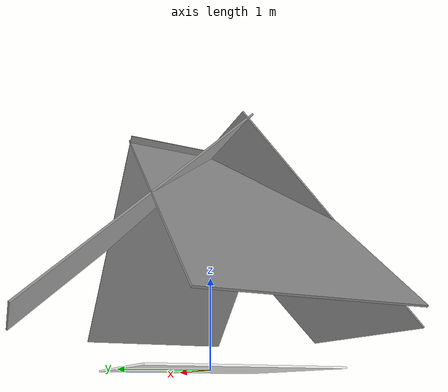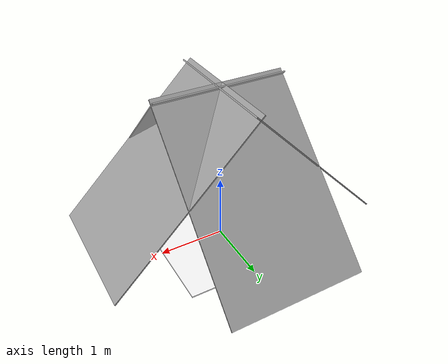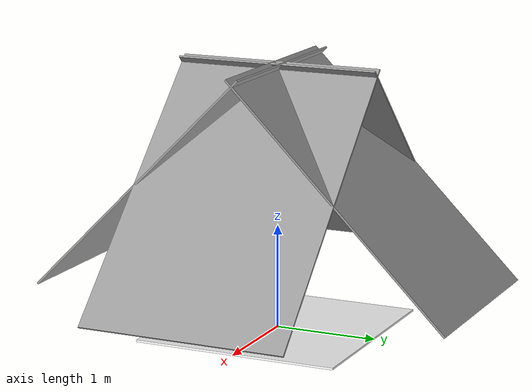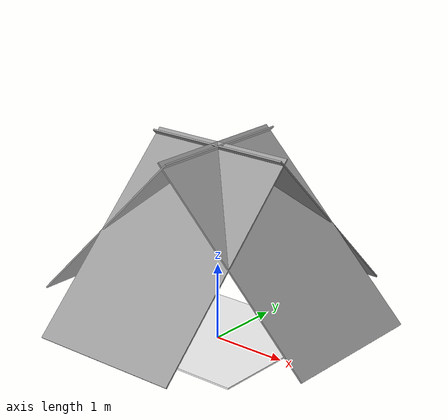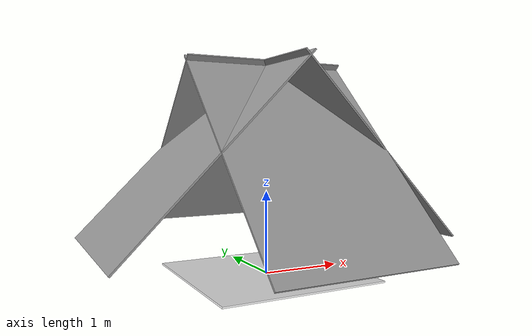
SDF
<?xml version="1.0" encoding="UTF-8"?>
<sdf version='1.9'>
  <model name='teknofest_qr_target'>
    <static>true</static>
    <link name='link'>
      <!-- 2m x 2m QR board lying on ground -->
      <visual name='qr_board'>
        <pose>0 0 0.01 0 0 0</pose>
        <geometry>
          <box><size>2 2 0.02</size></box>
        </geometry>
        <material>
          <ambient>1 1 1 1</ambient>
          <diffuse>1 1 1 1</diffuse>
        </material>
      </visual>
      <collision name='board_collision'>
        <pose>0 0 0.01 0 0 0</pose>
        <geometry>
          <box><size>2 2 0.02</size></box>
        </geometry>
      </collision>

      <!-- 4 angled plates at 45 degrees, 3m high, covering each side -->
      <!-- Front plate (+X side) -->
      <visual name='plate_front'>
        <pose>1 0 1.5 0 -0.7854 0</pose>
        <geometry>
          <box><size>0.02 2 3</size></box>
        </geometry>
        <material>
          <ambient>0.6 0.6 0.6 1</ambient>
          <diffuse>0.6 0.6 0.6 1</diffuse>
        </material>
      </visual>
      <collision name='plate_front_collision'>
        <pose>1 0 1.5 0 -0.7854 0</pose>
        <geometry>
          <box><size>0.02 2 3</size></box>
        </geometry>
      </collision>

      <!-- Back plate (-X side) -->
      <visual name='plate_back'>
        <pose>-1 0 1.5 0 0.7854 0</pose>
        <geometry>
          <box><size>0.02 2 3</size></box>
        </geometry>
        <material>
          <ambient>0.6 0.6 0.6 1</ambient>
          <diffuse>0.6 0.6 0.6 1</diffuse>
        </material>
      </visual>
      <collision name='plate_back_collision'>
        <pose>-1 0 1.5 0 0.7854 0</pose>
        <geometry>
          <box><size>0.02 2 3</size></box>
        </geometry>
      </collision>

      <!-- Left plate (+Y side) -->
      <visual name='plate_left'>
        <pose>0 1 1.5 0.7854 0 0</pose>
        <geometry>
          <box><size>2 0.02 3</size></box>
        </geometry>
        <material>
          <ambient>0.6 0.6 0.6 1</ambient>
          <diffuse>0.6 0.6 0.6 1</diffuse>
        </material>
      </visual>
      <collision name='plate_left_collision'>
        <pose>0 1 1.5 0.7854 0 0</pose>
        <geometry>
          <box><size>2 0.02 3</size></box>
        </geometry>
      </collision>

      <!-- Right plate (-Y side) -->
      <visual name='plate_right'>
        <pose>0 -1 1.5 -0.7854 0 0</pose>
        <geometry>
          <box><size>2 0.02 3</size></box>
        </geometry>
        <material>
          <ambient>0.6 0.6 0.6 1</ambient>
          <diffuse>0.6 0.6 0.6 1</diffuse>
        </material>
      </visual>
      <collision name='plate_right_collision'>
        <pose>0 -1 1.5 -0.7854 0 0</pose>
        <geometry>
          <box><size>2 0.02 3</size></box>
        </geometry>
      </collision>
    </link>
  </model>
</sdf>
